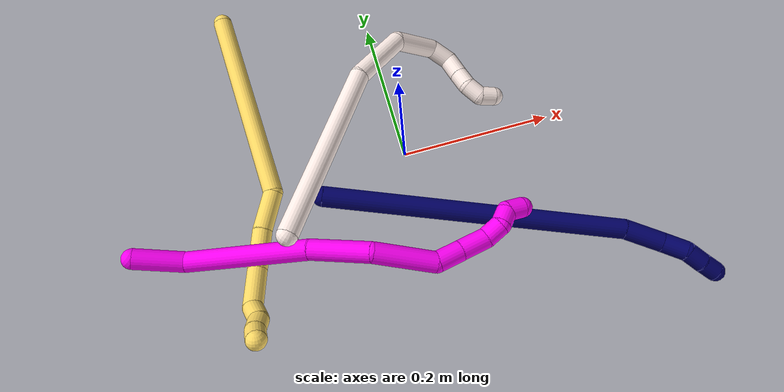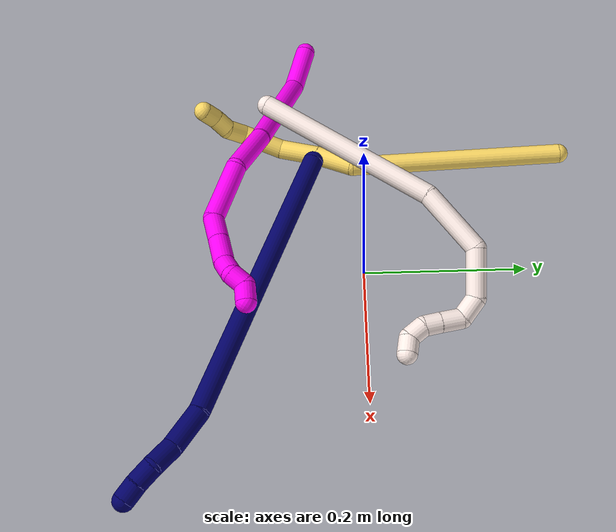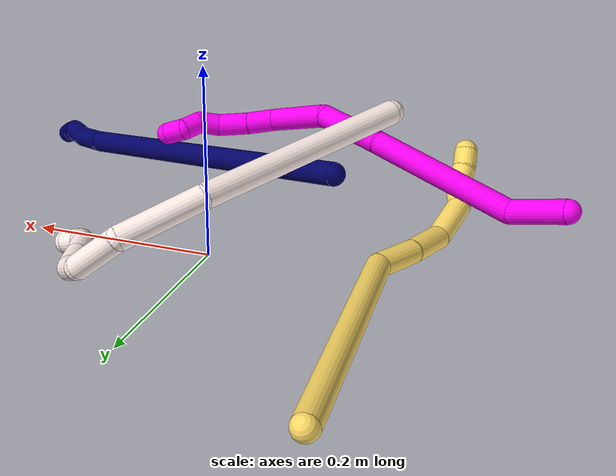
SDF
<sdf version="1.7">
 <world name="default">
  <model name="5">
   <static>0</static>
   <link name="5">
    <collision name="collision-cylinder-e_1_1_4">
     <pose>-0.004283 -0.113052 -0.078783 2.17942 -0.031075 -0.059518</pose>
     <geometry><cylinder><radius>0.0125</radius><length>0.275723</length></cylinder></geometry>
     <surface>
      <friction><ode><mu>1.16</mu><mu2>1.16</mu2><slip1>0</slip1><slip2>0</slip2></ode></friction>
      <contact><ode><kp>1e+06</kp><kd>1</kd><max_vel>0</max_vel><min_depth>0.001</min_depth></ode></contact>
     </surface>
    </collision>
    <visual name="visual-cylinder-e_1_1_4">
     <pose>-0.004283 -0.113052 -0.078783 2.17942 -0.031075 -0.059518</pose>
     <geometry><cylinder><radius>0.0125</radius><length>0.275723</length></cylinder></geometry>
     <material><ambient>1 0.858824 0.4 1</ambient></material>
    </visual>
    <collision name="collision-cylinder-e_2_4_5">
     <pose>-0.021794 -0.24157 -0.173169 2.36066 -0.541933 -1.18739</pose>
     <geometry><cylinder><radius>0.0125</radius><length>0.051289</length></cylinder></geometry>
     <surface>
      <friction><ode><mu>1.16</mu><mu2>1.16</mu2><slip1>0</slip1><slip2>0</slip2></ode></friction>
      <contact><ode><kp>1e+06</kp><kd>1</kd><max_vel>0</max_vel><min_depth>0.001</min_depth></ode></contact>
     </surface>
    </collision>
    <visual name="visual-cylinder-e_2_4_5">
     <pose>-0.021794 -0.24157 -0.173169 2.36066 -0.541933 -1.18739</pose>
     <geometry><cylinder><radius>0.0125</radius><length>0.051289</length></cylinder></geometry>
     <material><ambient>1 0.858824 0.4 1</ambient></material>
    </visual>
    <collision name="collision-cylinder-e_3_5_6">
     <pose>-0.044962 -0.274202 -0.204877 2.32425 -0.399631 -0.874874</pose>
     <geometry><cylinder><radius>0.0125</radius><length>0.0511</length></cylinder></geometry>
     <surface>
      <friction><ode><mu>1.16</mu><mu2>1.16</mu2><slip1>0</slip1><slip2>0</slip2></ode></friction>
      <contact><ode><kp>1e+06</kp><kd>1</kd><max_vel>0</max_vel><min_depth>0.001</min_depth></ode></contact>
     </surface>
    </collision>
    <visual name="visual-cylinder-e_3_5_6">
     <pose>-0.044962 -0.274202 -0.204877 2.32425 -0.399631 -0.874874</pose>
     <geometry><cylinder><radius>0.0125</radius><length>0.0511</length></cylinder></geometry>
     <material><ambient>1 0.858824 0.4 1</ambient></material>
    </visual>
    <collision name="collision-cylinder-e_4_6_7">
     <pose>-0.064746 -0.314903 -0.229234 1.90813 -0.37588 -0.524156</pose>
     <geometry><cylinder><radius>0.0125</radius><length>0.053626</length></cylinder></geometry>
     <surface>
      <friction><ode><mu>1.16</mu><mu2>1.16</mu2><slip1>0</slip1><slip2>0</slip2></ode></friction>
      <contact><ode><kp>1e+06</kp><kd>1</kd><max_vel>0</max_vel><min_depth>0.001</min_depth></ode></contact>
     </surface>
    </collision>
    <visual name="visual-cylinder-e_4_6_7">
     <pose>-0.064746 -0.314903 -0.229234 1.90813 -0.37588 -0.524156</pose>
     <geometry><cylinder><radius>0.0125</radius><length>0.053626</length></cylinder></geometry>
     <material><ambient>1 0.858824 0.4 1</ambient></material>
    </visual>
    <collision name="collision-cylinder-e_5_7_8">
     <pose>-0.074174 -0.351652 -0.236705 1.51154 0.031273 0.029473</pose>
     <geometry><cylinder><radius>0.0125</radius><length>0.026487</length></cylinder></geometry>
     <surface>
      <friction><ode><mu>1.16</mu><mu2>1.16</mu2><slip1>0</slip1><slip2>0</slip2></ode></friction>
      <contact><ode><kp>1e+06</kp><kd>1</kd><max_vel>0</max_vel><min_depth>0.001</min_depth></ode></contact>
     </surface>
    </collision>
    <visual name="visual-cylinder-e_5_7_8">
     <pose>-0.074174 -0.351652 -0.236705 1.51154 0.031273 0.029473</pose>
     <geometry><cylinder><radius>0.0125</radius><length>0.026487</length></cylinder></geometry>
     <material><ambient>1 0.858824 0.4 1</ambient></material>
    </visual>
    <collision name="collision-cylinder-e_6_8_9">
     <pose>-0.078027 -0.374575 -0.234264 1.40176 -0.40881 -0.346335</pose>
     <geometry><cylinder><radius>0.0125</radius><length>0.021469</length></cylinder></geometry>
     <surface>
      <friction><ode><mu>1.16</mu><mu2>1.16</mu2><slip1>0</slip1><slip2>0</slip2></ode></friction>
      <contact><ode><kp>1e+06</kp><kd>1</kd><max_vel>0</max_vel><min_depth>0.001</min_depth></ode></contact>
     </surface>
    </collision>
    <visual name="visual-cylinder-e_6_8_9">
     <pose>-0.078027 -0.374575 -0.234264 1.40176 -0.40881 -0.346335</pose>
     <geometry><cylinder><radius>0.0125</radius><length>0.021469</length></cylinder></geometry>
     <material><ambient>1 0.858824 0.4 1</ambient></material>
    </visual>
    <collision name="collision-cylinder-e_7_9_2">
     <pose>-0.08388 -0.394161 -0.230865 1.39619 -0.156825 -0.131662</pose>
     <geometry><cylinder><radius>0.0125</radius><length>0.020306</length></cylinder></geometry>
     <surface>
      <friction><ode><mu>1.16</mu><mu2>1.16</mu2><slip1>0</slip1><slip2>0</slip2></ode></friction>
      <contact><ode><kp>1e+06</kp><kd>1</kd><max_vel>0</max_vel><min_depth>0.001</min_depth></ode></contact>
     </surface>
    </collision>
    <visual name="visual-cylinder-e_7_9_2">
     <pose>-0.08388 -0.394161 -0.230865 1.39619 -0.156825 -0.131662</pose>
     <geometry><cylinder><radius>0.0125</radius><length>0.020306</length></cylinder></geometry>
     <material><ambient>1 0.858824 0.4 1</ambient></material>
    </visual>
    <collision name="collision-sphere-2">
     <pose>-0.085466 -0.404037 -0.229123 0 -0 0</pose>
     <geometry><sphere><radius>0.0125</radius></sphere></geometry>
     <surface>
      <friction><ode><mu>1.16</mu><mu2>1.16</mu2><slip1>0</slip1><slip2>0</slip2></ode></friction>
      <contact><ode><kp>1e+06</kp><kd>1</kd><max_vel>0</max_vel><min_depth>0.001</min_depth></ode></contact>
     </surface>
    </collision>
    <visual name="visual-sphere-2">
     <pose>-0.085466 -0.404037 -0.229123 0 -0 0</pose>
     <geometry><sphere><radius>0.0125</radius></sphere></geometry>
     <material><ambient>1 0.858824 0.4 1</ambient></material>
    </visual>
    <collision name="collision-sphere-9">
     <pose>-0.082294 -0.384285 -0.232607 0 -0 0</pose>
     <geometry><sphere><radius>0.0125</radius></sphere></geometry>
     <surface>
      <friction><ode><mu>1.16</mu><mu2>1.16</mu2><slip1>0</slip1><slip2>0</slip2></ode></friction>
      <contact><ode><kp>1e+06</kp><kd>1</kd><max_vel>0</max_vel><min_depth>0.001</min_depth></ode></contact>
     </surface>
    </collision>
    <visual name="visual-sphere-9">
     <pose>-0.082294 -0.384285 -0.232607 0 -0 0</pose>
     <geometry><sphere><radius>0.0125</radius></sphere></geometry>
     <material><ambient>1 0.858824 0.4 1</ambient></material>
    </visual>
    <collision name="collision-sphere-4">
     <pose>-0.008567 -0.226104 -0.157565 0 -0 0</pose>
     <geometry><sphere><radius>0.0125</radius></sphere></geometry>
     <surface>
      <friction><ode><mu>1.16</mu><mu2>1.16</mu2><slip1>0</slip1><slip2>0</slip2></ode></friction>
      <contact><ode><kp>1e+06</kp><kd>1</kd><max_vel>0</max_vel><min_depth>0.001</min_depth></ode></contact>
     </surface>
    </collision>
    <visual name="visual-sphere-4">
     <pose>-0.008567 -0.226104 -0.157565 0 -0 0</pose>
     <geometry><sphere><radius>0.0125</radius></sphere></geometry>
     <material><ambient>1 0.858824 0.4 1</ambient></material>
    </visual>
    <collision name="collision-sphere-1">
     <geometry><sphere><radius>0.0125</radius></sphere></geometry>
     <surface>
      <friction><ode><mu>1.16</mu><mu2>1.16</mu2><slip1>0</slip1><slip2>0</slip2></ode></friction>
      <contact><ode><kp>1e+06</kp><kd>1</kd><max_vel>0</max_vel><min_depth>0.001</min_depth></ode></contact>
     </surface>
    </collision>
    <visual name="visual-sphere-1">
     <geometry><sphere><radius>0.0125</radius></sphere></geometry>
     <material><ambient>1 0.858824 0.4 1</ambient></material>
    </visual>
    <collision name="collision-sphere-8">
     <pose>-0.07376 -0.364866 -0.235921 0 -0 0</pose>
     <geometry><sphere><radius>0.0125</radius></sphere></geometry>
     <surface>
      <friction><ode><mu>1.16</mu><mu2>1.16</mu2><slip1>0</slip1><slip2>0</slip2></ode></friction>
      <contact><ode><kp>1e+06</kp><kd>1</kd><max_vel>0</max_vel><min_depth>0.001</min_depth></ode></contact>
     </surface>
    </collision>
    <visual name="visual-sphere-8">
     <pose>-0.07376 -0.364866 -0.235921 0 -0 0</pose>
     <geometry><sphere><radius>0.0125</radius></sphere></geometry>
     <material><ambient>1 0.858824 0.4 1</ambient></material>
    </visual>
    <collision name="collision-sphere-5">
     <pose>-0.035021 -0.257036 -0.188774 0 -0 0</pose>
     <geometry><sphere><radius>0.0125</radius></sphere></geometry>
     <surface>
      <friction><ode><mu>1.16</mu><mu2>1.16</mu2><slip1>0</slip1><slip2>0</slip2></ode></friction>
      <contact><ode><kp>1e+06</kp><kd>1</kd><max_vel>0</max_vel><min_depth>0.001</min_depth></ode></contact>
     </surface>
    </collision>
    <visual name="visual-sphere-5">
     <pose>-0.035021 -0.257036 -0.188774 0 -0 0</pose>
     <geometry><sphere><radius>0.0125</radius></sphere></geometry>
     <material><ambient>1 0.858824 0.4 1</ambient></material>
    </visual>
    <collision name="collision-sphere-6">
     <pose>-0.054903 -0.291368 -0.22098 0 -0 0</pose>
     <geometry><sphere><radius>0.0125</radius></sphere></geometry>
     <surface>
      <friction><ode><mu>1.16</mu><mu2>1.16</mu2><slip1>0</slip1><slip2>0</slip2></ode></friction>
      <contact><ode><kp>1e+06</kp><kd>1</kd><max_vel>0</max_vel><min_depth>0.001</min_depth></ode></contact>
     </surface>
    </collision>
    <visual name="visual-sphere-6">
     <pose>-0.054903 -0.291368 -0.22098 0 -0 0</pose>
     <geometry><sphere><radius>0.0125</radius></sphere></geometry>
     <material><ambient>1 0.858824 0.4 1</ambient></material>
    </visual>
    <collision name="collision-sphere-7">
     <pose>-0.074588 -0.338438 -0.237489 0 -0 0</pose>
     <geometry><sphere><radius>0.0125</radius></sphere></geometry>
     <surface>
      <friction><ode><mu>1.16</mu><mu2>1.16</mu2><slip1>0</slip1><slip2>0</slip2></ode></friction>
      <contact><ode><kp>1e+06</kp><kd>1</kd><max_vel>0</max_vel><min_depth>0.001</min_depth></ode></contact>
     </surface>
    </collision>
    <visual name="visual-sphere-7">
     <pose>-0.074588 -0.338438 -0.237489 0 -0 0</pose>
     <geometry><sphere><radius>0.0125</radius></sphere></geometry>
     <material><ambient>1 0.858824 0.4 1</ambient></material>
    </visual>
    <inertial>
     <pose>-0.026823 -0.199639 -0.138706 0 -0 0</pose>
     <mass>0.5</mass>
     <inertia>
      <ixx>0.001645</ixx>
      <ixy>0</ixy>
      <ixz>0</ixz>
      <iyy>-0.001167</iyy>
      <iyz>0</iyz>
      <izz>0.001532</izz>
     </inertia>
    </inertial>
   </link>
   <pose>-0.196321 0.266072 0.011898 -0.610055 0.245782 0.093479</pose>
  </model>
  <model name="7">
   <static>0</static>
   <link name="7">
    <collision name="collision-cylinder-e_1_1_4">
     <pose>0.126211 -0.070003 -0.117827 2.60551 0.744236 1.9152</pose>
     <geometry><cylinder><radius>0.0125</radius><length>0.372629</length></cylinder></geometry>
     <surface>
      <friction><ode><mu>1.16</mu><mu2>1.16</mu2><slip1>0</slip1><slip2>0</slip2></ode></friction>
      <contact><ode><kp>1e+06</kp><kd>1</kd><max_vel>0</max_vel><min_depth>0.001</min_depth></ode></contact>
     </surface>
    </collision>
    <visual name="visual-cylinder-e_1_1_4">
     <pose>0.126211 -0.070003 -0.117827 2.60551 0.744236 1.9152</pose>
     <geometry><cylinder><radius>0.0125</radius><length>0.372629</length></cylinder></geometry>
     <material><ambient>0.003922 0 0.403922 1</ambient></material>
    </visual>
    <collision name="collision-cylinder-e_2_4_5">
     <pose>0.27237 -0.144739 -0.249721 2.81707 0.931155 2.51164</pose>
     <geometry><cylinder><radius>0.0125</radius><length>0.049727</length></cylinder></geometry>
     <surface>
      <friction><ode><mu>1.16</mu><mu2>1.16</mu2><slip1>0</slip1><slip2>0</slip2></ode></friction>
      <contact><ode><kp>1e+06</kp><kd>1</kd><max_vel>0</max_vel><min_depth>0.001</min_depth></ode></contact>
     </surface>
    </collision>
    <visual name="visual-cylinder-e_2_4_5">
     <pose>0.27237 -0.144739 -0.249721 2.81707 0.931155 2.51164</pose>
     <geometry><cylinder><radius>0.0125</radius><length>0.049727</length></cylinder></geometry>
     <material><ambient>0.003922 0 0.403922 1</ambient></material>
    </visual>
    <collision name="collision-cylinder-e_3_5_6">
     <pose>0.303961 -0.15006 -0.273952 3.08367 0.85227 3.01414</pose>
     <geometry><cylinder><radius>0.0125</radius><length>0.030932</length></cylinder></geometry>
     <surface>
      <friction><ode><mu>1.16</mu><mu2>1.16</mu2><slip1>0</slip1><slip2>0</slip2></ode></friction>
      <contact><ode><kp>1e+06</kp><kd>1</kd><max_vel>0</max_vel><min_depth>0.001</min_depth></ode></contact>
     </surface>
    </collision>
    <visual name="visual-cylinder-e_3_5_6">
     <pose>0.303961 -0.15006 -0.273952 3.08367 0.85227 3.01414</pose>
     <geometry><cylinder><radius>0.0125</radius><length>0.030932</length></cylinder></geometry>
     <material><ambient>0.003922 0 0.403922 1</ambient></material>
    </visual>
    <collision name="collision-cylinder-e_4_6_7">
     <pose>0.327253 -0.151896 -0.287939 2.82662 1.23838 2.70312</pose>
     <geometry><cylinder><radius>0.0125</radius><length>0.02465</length></cylinder></geometry>
     <surface>
      <friction><ode><mu>1.16</mu><mu2>1.16</mu2><slip1>0</slip1><slip2>0</slip2></ode></friction>
      <contact><ode><kp>1e+06</kp><kd>1</kd><max_vel>0</max_vel><min_depth>0.001</min_depth></ode></contact>
     </surface>
    </collision>
    <visual name="visual-cylinder-e_4_6_7">
     <pose>0.327253 -0.151896 -0.287939 2.82662 1.23838 2.70312</pose>
     <geometry><cylinder><radius>0.0125</radius><length>0.02465</length></cylinder></geometry>
     <material><ambient>0.003922 0 0.403922 1</ambient></material>
    </visual>
    <collision name="collision-cylinder-e_5_7_2">
     <pose>0.349278 -0.155413 -0.29475 2.49135 1.22376 2.24596</pose>
     <geometry><cylinder><radius>0.0125</radius><length>0.022063</length></cylinder></geometry>
     <surface>
      <friction><ode><mu>1.16</mu><mu2>1.16</mu2><slip1>0</slip1><slip2>0</slip2></ode></friction>
      <contact><ode><kp>1e+06</kp><kd>1</kd><max_vel>0</max_vel><min_depth>0.001</min_depth></ode></contact>
     </surface>
    </collision>
    <visual name="visual-cylinder-e_5_7_2">
     <pose>0.349278 -0.155413 -0.29475 2.49135 1.22376 2.24596</pose>
     <geometry><cylinder><radius>0.0125</radius><length>0.022063</length></cylinder></geometry>
     <material><ambient>0.003922 0 0.403922 1</ambient></material>
    </visual>
    <collision name="collision-sphere-2">
     <pose>0.359651 -0.157684 -0.297736 0 -0 0</pose>
     <geometry><sphere><radius>0.0125</radius></sphere></geometry>
     <surface>
      <friction><ode><mu>1.16</mu><mu2>1.16</mu2><slip1>0</slip1><slip2>0</slip2></ode></friction>
      <contact><ode><kp>1e+06</kp><kd>1</kd><max_vel>0</max_vel><min_depth>0.001</min_depth></ode></contact>
     </surface>
    </collision>
    <visual name="visual-sphere-2">
     <pose>0.359651 -0.157684 -0.297736 0 -0 0</pose>
     <geometry><sphere><radius>0.0125</radius></sphere></geometry>
     <material><ambient>0.003922 0 0.403922 1</ambient></material>
    </visual>
    <collision name="collision-sphere-7">
     <pose>0.338904 -0.153142 -0.291763 0 -0 0</pose>
     <geometry><sphere><radius>0.0125</radius></sphere></geometry>
     <surface>
      <friction><ode><mu>1.16</mu><mu2>1.16</mu2><slip1>0</slip1><slip2>0</slip2></ode></friction>
      <contact><ode><kp>1e+06</kp><kd>1</kd><max_vel>0</max_vel><min_depth>0.001</min_depth></ode></contact>
     </surface>
    </collision>
    <visual name="visual-sphere-7">
     <pose>0.338904 -0.153142 -0.291763 0 -0 0</pose>
     <geometry><sphere><radius>0.0125</radius></sphere></geometry>
     <material><ambient>0.003922 0 0.403922 1</ambient></material>
    </visual>
    <collision name="collision-sphere-6">
     <pose>0.315603 -0.15065 -0.284115 0 -0 0</pose>
     <geometry><sphere><radius>0.0125</radius></sphere></geometry>
     <surface>
      <friction><ode><mu>1.16</mu><mu2>1.16</mu2><slip1>0</slip1><slip2>0</slip2></ode></friction>
      <contact><ode><kp>1e+06</kp><kd>1</kd><max_vel>0</max_vel><min_depth>0.001</min_depth></ode></contact>
     </surface>
    </collision>
    <visual name="visual-sphere-6">
     <pose>0.315603 -0.15065 -0.284115 0 -0 0</pose>
     <geometry><sphere><radius>0.0125</radius></sphere></geometry>
     <material><ambient>0.003922 0 0.403922 1</ambient></material>
    </visual>
    <collision name="collision-sphere-5">
     <pose>0.292318 -0.149471 -0.263788 0 -0 0</pose>
     <geometry><sphere><radius>0.0125</radius></sphere></geometry>
     <surface>
      <friction><ode><mu>1.16</mu><mu2>1.16</mu2><slip1>0</slip1><slip2>0</slip2></ode></friction>
      <contact><ode><kp>1e+06</kp><kd>1</kd><max_vel>0</max_vel><min_depth>0.001</min_depth></ode></contact>
     </surface>
    </collision>
    <visual name="visual-sphere-5">
     <pose>0.292318 -0.149471 -0.263788 0 -0 0</pose>
     <geometry><sphere><radius>0.0125</radius></sphere></geometry>
     <material><ambient>0.003922 0 0.403922 1</ambient></material>
    </visual>
    <collision name="collision-sphere-1">
     <geometry><sphere><radius>0.0125</radius></sphere></geometry>
     <surface>
      <friction><ode><mu>1.16</mu><mu2>1.16</mu2><slip1>0</slip1><slip2>0</slip2></ode></friction>
      <contact><ode><kp>1e+06</kp><kd>1</kd><max_vel>0</max_vel><min_depth>0.001</min_depth></ode></contact>
     </surface>
    </collision>
    <visual name="visual-sphere-1">
     <geometry><sphere><radius>0.0125</radius></sphere></geometry>
     <material><ambient>0.003922 0 0.403922 1</ambient></material>
    </visual>
    <collision name="collision-sphere-4">
     <pose>0.252422 -0.140007 -0.235655 0 -0 0</pose>
     <geometry><sphere><radius>0.0125</radius></sphere></geometry>
     <surface>
      <friction><ode><mu>1.16</mu><mu2>1.16</mu2><slip1>0</slip1><slip2>0</slip2></ode></friction>
      <contact><ode><kp>1e+06</kp><kd>1</kd><max_vel>0</max_vel><min_depth>0.001</min_depth></ode></contact>
     </surface>
    </collision>
    <visual name="visual-sphere-4">
     <pose>0.252422 -0.140007 -0.235655 0 -0 0</pose>
     <geometry><sphere><radius>0.0125</radius></sphere></geometry>
     <material><ambient>0.003922 0 0.403922 1</ambient></material>
    </visual>
    <inertial>
     <pose>0.171498 -0.090195 -0.156797 0 -0 0</pose>
     <mass>0.5</mass>
     <inertia>
      <ixx>0.001945</ixx>
      <ixy>0</ixy>
      <ixz>0</ixz>
      <iyy>0.005672</iyy>
      <iyz>0</iyz>
      <izz>-0.001342</izz>
     </inertia>
    </inertial>
   </link>
   <pose>-0.11515 -0.059239 0.083412 2.4872 0.556962 -1.11497</pose>
  </model>
  <model name="10">
   <static>0</static>
   <link name="10">
    <collision name="collision-cylinder-e_1_1_4">
     <pose>0.015893 0.000146 -0.025803 -3.13595 0.552064 -3.12169</pose>
     <geometry><cylinder><radius>0.0125</radius><length>0.06061</length></cylinder></geometry>
     <surface>
      <friction><ode><mu>1.16</mu><mu2>1.16</mu2><slip1>0</slip1><slip2>0</slip2></ode></friction>
      <contact><ode><kp>1e+06</kp><kd>1</kd><max_vel>0</max_vel><min_depth>0.001</min_depth></ode></contact>
     </surface>
    </collision>
    <visual name="visual-cylinder-e_1_1_4">
     <pose>0.015893 0.000146 -0.025803 -3.13595 0.552064 -3.12169</pose>
     <geometry><cylinder><radius>0.0125</radius><length>0.06061</length></cylinder></geometry>
     <material><ambient>1 0 0.964706 1</ambient></material>
    </visual>
    <collision name="collision-cylinder-e_2_4_5">
     <pose>0.093358 -0.025133 -0.094601 2.60758 0.889233 2.09923</pose>
     <geometry><cylinder><radius>0.0125</radius><length>0.158569</length></cylinder></geometry>
     <surface>
      <friction><ode><mu>1.16</mu><mu2>1.16</mu2><slip1>0</slip1><slip2>0</slip2></ode></friction>
      <contact><ode><kp>1e+06</kp><kd>1</kd><max_vel>0</max_vel><min_depth>0.001</min_depth></ode></contact>
     </surface>
    </collision>
    <visual name="visual-cylinder-e_2_4_5">
     <pose>0.093358 -0.025133 -0.094601 2.60758 0.889233 2.09923</pose>
     <geometry><cylinder><radius>0.0125</radius><length>0.158569</length></cylinder></geometry>
     <material><ambient>1 0 0.964706 1</ambient></material>
    </visual>
    <collision name="collision-cylinder-e_3_5_6">
     <pose>0.180039 -0.063742 -0.16144 2.63646 0.74461 1.97364</pose>
     <geometry><cylinder><radius>0.0125</radius><length>0.074104</length></cylinder></geometry>
     <surface>
      <friction><ode><mu>1.16</mu><mu2>1.16</mu2><slip1>0</slip1><slip2>0</slip2></ode></friction>
      <contact><ode><kp>1e+06</kp><kd>1</kd><max_vel>0</max_vel><min_depth>0.001</min_depth></ode></contact>
     </surface>
    </collision>
    <visual name="visual-cylinder-e_3_5_6">
     <pose>0.180039 -0.063742 -0.16144 2.63646 0.74461 1.97364</pose>
     <geometry><cylinder><radius>0.0125</radius><length>0.074104</length></cylinder></geometry>
     <material><ambient>1 0 0.964706 1</ambient></material>
    </visual>
    <collision name="collision-cylinder-e_4_6_7">
     <pose>0.222441 -0.078599 -0.218466 3.09126 0.479889 2.93653</pose>
     <geometry><cylinder><radius>0.0125</radius><length>0.074913</length></cylinder></geometry>
     <surface>
      <friction><ode><mu>1.16</mu><mu2>1.16</mu2><slip1>0</slip1><slip2>0</slip2></ode></friction>
      <contact><ode><kp>1e+06</kp><kd>1</kd><max_vel>0</max_vel><min_depth>0.001</min_depth></ode></contact>
     </surface>
    </collision>
    <visual name="visual-cylinder-e_4_6_7">
     <pose>0.222441 -0.078599 -0.218466 3.09126 0.479889 2.93653</pose>
     <geometry><cylinder><radius>0.0125</radius><length>0.074913</length></cylinder></geometry>
     <material><ambient>1 0 0.964706 1</ambient></material>
    </visual>
    <collision name="collision-cylinder-e_5_7_8">
     <pose>0.251734 -0.075054 -0.260495 -2.6087 0.862947 -2.07136</pose>
     <geometry><cylinder><radius>0.0125</radius><length>0.031588</length></cylinder></geometry>
     <surface>
      <friction><ode><mu>1.16</mu><mu2>1.16</mu2><slip1>0</slip1><slip2>0</slip2></ode></friction>
      <contact><ode><kp>1e+06</kp><kd>1</kd><max_vel>0</max_vel><min_depth>0.001</min_depth></ode></contact>
     </surface>
    </collision>
    <visual name="visual-cylinder-e_5_7_8">
     <pose>0.251734 -0.075054 -0.260495 -2.6087 0.862947 -2.07136</pose>
     <geometry><cylinder><radius>0.0125</radius><length>0.031588</length></cylinder></geometry>
     <material><ambient>1 0 0.964706 1</ambient></material>
    </visual>
    <collision name="collision-cylinder-e_6_8_9">
     <pose>0.277574 -0.065085 -0.278582 -2.66675 0.926778 -2.2396</pose>
     <geometry><cylinder><radius>0.0125</radius><length>0.034616</length></cylinder></geometry>
     <surface>
      <friction><ode><mu>1.16</mu><mu2>1.16</mu2><slip1>0</slip1><slip2>0</slip2></ode></friction>
      <contact><ode><kp>1e+06</kp><kd>1</kd><max_vel>0</max_vel><min_depth>0.001</min_depth></ode></contact>
     </surface>
    </collision>
    <visual name="visual-cylinder-e_6_8_9">
     <pose>0.277574 -0.065085 -0.278582 -2.66675 0.926778 -2.2396</pose>
     <geometry><cylinder><radius>0.0125</radius><length>0.034616</length></cylinder></geometry>
     <material><ambient>1 0 0.964706 1</ambient></material>
    </visual>
    <collision name="collision-cylinder-e_7_9_10">
     <pose>0.302438 -0.057549 -0.290541 -2.34384 1.23151 -2.06708</pose>
     <geometry><cylinder><radius>0.0125</radius><length>0.02338</length></cylinder></geometry>
     <surface>
      <friction><ode><mu>1.16</mu><mu2>1.16</mu2><slip1>0</slip1><slip2>0</slip2></ode></friction>
      <contact><ode><kp>1e+06</kp><kd>1</kd><max_vel>0</max_vel><min_depth>0.001</min_depth></ode></contact>
     </surface>
    </collision>
    <visual name="visual-cylinder-e_7_9_10">
     <pose>0.302438 -0.057549 -0.290541 -2.34384 1.23151 -2.06708</pose>
     <geometry><cylinder><radius>0.0125</radius><length>0.02338</length></cylinder></geometry>
     <material><ambient>1 0 0.964706 1</ambient></material>
    </visual>
    <collision name="collision-cylinder-e_8_10_11">
     <pose>0.320088 -0.047035 -0.294358 -1.71214 0.703771 -0.800536</pose>
     <geometry><cylinder><radius>0.0125</radius><length>0.020481</length></cylinder></geometry>
     <surface>
      <friction><ode><mu>1.16</mu><mu2>1.16</mu2><slip1>0</slip1><slip2>0</slip2></ode></friction>
      <contact><ode><kp>1e+06</kp><kd>1</kd><max_vel>0</max_vel><min_depth>0.001</min_depth></ode></contact>
     </surface>
    </collision>
    <visual name="visual-cylinder-e_8_10_11">
     <pose>0.320088 -0.047035 -0.294358 -1.71214 0.703771 -0.800536</pose>
     <geometry><cylinder><radius>0.0125</radius><length>0.020481</length></cylinder></geometry>
     <material><ambient>1 0 0.964706 1</ambient></material>
    </visual>
    <collision name="collision-cylinder-e_9_11_2">
     <pose>0.333463 -0.035924 -0.303281 -2.73353 0.669718 -2.06867</pose>
     <geometry><cylinder><radius>0.0125</radius><length>0.021741</length></cylinder></geometry>
     <surface>
      <friction><ode><mu>1.16</mu><mu2>1.16</mu2><slip1>0</slip1><slip2>0</slip2></ode></friction>
      <contact><ode><kp>1e+06</kp><kd>1</kd><max_vel>0</max_vel><min_depth>0.001</min_depth></ode></contact>
     </surface>
    </collision>
    <visual name="visual-cylinder-e_9_11_2">
     <pose>0.333463 -0.035924 -0.303281 -2.73353 0.669718 -2.06867</pose>
     <geometry><cylinder><radius>0.0125</radius><length>0.021741</length></cylinder></geometry>
     <material><ambient>1 0 0.964706 1</ambient></material>
    </visual>
    <collision name="collision-sphere-2">
     <pose>0.340211 -0.032542 -0.311103 0 -0 0</pose>
     <geometry><sphere><radius>0.0125</radius></sphere></geometry>
     <surface>
      <friction><ode><mu>1.16</mu><mu2>1.16</mu2><slip1>0</slip1><slip2>0</slip2></ode></friction>
      <contact><ode><kp>1e+06</kp><kd>1</kd><max_vel>0</max_vel><min_depth>0.001</min_depth></ode></contact>
     </surface>
    </collision>
    <visual name="visual-sphere-2">
     <pose>0.340211 -0.032542 -0.311103 0 -0 0</pose>
     <geometry><sphere><radius>0.0125</radius></sphere></geometry>
     <material><ambient>1 0 0.964706 1</ambient></material>
    </visual>
    <collision name="collision-sphere-11">
     <pose>0.326715 -0.039306 -0.295458 0 -0 0</pose>
     <geometry><sphere><radius>0.0125</radius></sphere></geometry>
     <surface>
      <friction><ode><mu>1.16</mu><mu2>1.16</mu2><slip1>0</slip1><slip2>0</slip2></ode></friction>
      <contact><ode><kp>1e+06</kp><kd>1</kd><max_vel>0</max_vel><min_depth>0.001</min_depth></ode></contact>
     </surface>
    </collision>
    <visual name="visual-sphere-11">
     <pose>0.326715 -0.039306 -0.295458 0 -0 0</pose>
     <geometry><sphere><radius>0.0125</radius></sphere></geometry>
     <material><ambient>1 0 0.964706 1</ambient></material>
    </visual>
    <collision name="collision-sphere-10">
     <pose>0.313462 -0.054765 -0.293258 0 -0 0</pose>
     <geometry><sphere><radius>0.0125</radius></sphere></geometry>
     <surface>
      <friction><ode><mu>1.16</mu><mu2>1.16</mu2><slip1>0</slip1><slip2>0</slip2></ode></friction>
      <contact><ode><kp>1e+06</kp><kd>1</kd><max_vel>0</max_vel><min_depth>0.001</min_depth></ode></contact>
     </surface>
    </collision>
    <visual name="visual-sphere-10">
     <pose>0.313462 -0.054765 -0.293258 0 -0 0</pose>
     <geometry><sphere><radius>0.0125</radius></sphere></geometry>
     <material><ambient>1 0 0.964706 1</ambient></material>
    </visual>
    <collision name="collision-sphere-9">
     <pose>0.291415 -0.060334 -0.287825 0 -0 0</pose>
     <geometry><sphere><radius>0.0125</radius></sphere></geometry>
     <surface>
      <friction><ode><mu>1.16</mu><mu2>1.16</mu2><slip1>0</slip1><slip2>0</slip2></ode></friction>
      <contact><ode><kp>1e+06</kp><kd>1</kd><max_vel>0</max_vel><min_depth>0.001</min_depth></ode></contact>
     </surface>
    </collision>
    <visual name="visual-sphere-9">
     <pose>0.291415 -0.060334 -0.287825 0 -0 0</pose>
     <geometry><sphere><radius>0.0125</radius></sphere></geometry>
     <material><ambient>1 0 0.964706 1</ambient></material>
    </visual>
    <collision name="collision-sphere-4">
     <pose>0.031787 0.000291 -0.051605 0 -0 0</pose>
     <geometry><sphere><radius>0.0125</radius></sphere></geometry>
     <surface>
      <friction><ode><mu>1.16</mu><mu2>1.16</mu2><slip1>0</slip1><slip2>0</slip2></ode></friction>
      <contact><ode><kp>1e+06</kp><kd>1</kd><max_vel>0</max_vel><min_depth>0.001</min_depth></ode></contact>
     </surface>
    </collision>
    <visual name="visual-sphere-4">
     <pose>0.031787 0.000291 -0.051605 0 -0 0</pose>
     <geometry><sphere><radius>0.0125</radius></sphere></geometry>
     <material><ambient>1 0 0.964706 1</ambient></material>
    </visual>
    <collision name="collision-sphere-1">
     <geometry><sphere><radius>0.0125</radius></sphere></geometry>
     <surface>
      <friction><ode><mu>1.16</mu><mu2>1.16</mu2><slip1>0</slip1><slip2>0</slip2></ode></friction>
      <contact><ode><kp>1e+06</kp><kd>1</kd><max_vel>0</max_vel><min_depth>0.001</min_depth></ode></contact>
     </surface>
    </collision>
    <visual name="visual-sphere-1">
     <geometry><sphere><radius>0.0125</radius></sphere></geometry>
     <material><ambient>1 0 0.964706 1</ambient></material>
    </visual>
    <collision name="collision-sphere-8">
     <pose>0.263733 -0.069837 -0.26934 0 -0 0</pose>
     <geometry><sphere><radius>0.0125</radius></sphere></geometry>
     <surface>
      <friction><ode><mu>1.16</mu><mu2>1.16</mu2><slip1>0</slip1><slip2>0</slip2></ode></friction>
      <contact><ode><kp>1e+06</kp><kd>1</kd><max_vel>0</max_vel><min_depth>0.001</min_depth></ode></contact>
     </surface>
    </collision>
    <visual name="visual-sphere-8">
     <pose>0.263733 -0.069837 -0.26934 0 -0 0</pose>
     <geometry><sphere><radius>0.0125</radius></sphere></geometry>
     <material><ambient>1 0 0.964706 1</ambient></material>
    </visual>
    <collision name="collision-sphere-5">
     <pose>0.154929 -0.050557 -0.137596 0 -0 0</pose>
     <geometry><sphere><radius>0.0125</radius></sphere></geometry>
     <surface>
      <friction><ode><mu>1.16</mu><mu2>1.16</mu2><slip1>0</slip1><slip2>0</slip2></ode></friction>
      <contact><ode><kp>1e+06</kp><kd>1</kd><max_vel>0</max_vel><min_depth>0.001</min_depth></ode></contact>
     </surface>
    </collision>
    <visual name="visual-sphere-5">
     <pose>0.154929 -0.050557 -0.137596 0 -0 0</pose>
     <geometry><sphere><radius>0.0125</radius></sphere></geometry>
     <material><ambient>1 0 0.964706 1</ambient></material>
    </visual>
    <collision name="collision-sphere-6">
     <pose>0.205148 -0.076927 -0.185283 0 -0 0</pose>
     <geometry><sphere><radius>0.0125</radius></sphere></geometry>
     <surface>
      <friction><ode><mu>1.16</mu><mu2>1.16</mu2><slip1>0</slip1><slip2>0</slip2></ode></friction>
      <contact><ode><kp>1e+06</kp><kd>1</kd><max_vel>0</max_vel><min_depth>0.001</min_depth></ode></contact>
     </surface>
    </collision>
    <visual name="visual-sphere-6">
     <pose>0.205148 -0.076927 -0.185283 0 -0 0</pose>
     <geometry><sphere><radius>0.0125</radius></sphere></geometry>
     <material><ambient>1 0 0.964706 1</ambient></material>
    </visual>
    <collision name="collision-sphere-7">
     <pose>0.239734 -0.080271 -0.25165 0 -0 0</pose>
     <geometry><sphere><radius>0.0125</radius></sphere></geometry>
     <surface>
      <friction><ode><mu>1.16</mu><mu2>1.16</mu2><slip1>0</slip1><slip2>0</slip2></ode></friction>
      <contact><ode><kp>1e+06</kp><kd>1</kd><max_vel>0</max_vel><min_depth>0.001</min_depth></ode></contact>
     </surface>
    </collision>
    <visual name="visual-sphere-7">
     <pose>0.239734 -0.080271 -0.25165 0 -0 0</pose>
     <geometry><sphere><radius>0.0125</radius></sphere></geometry>
     <material><ambient>1 0 0.964706 1</ambient></material>
    </visual>
    <inertial>
     <pose>0.168417 -0.044603 -0.164361 0 -0 0</pose>
     <mass>0.5</mass>
     <inertia>
      <ixx>6.3e-05</ixx>
      <ixy>0</ixy>
      <ixz>0</ixz>
      <iyy>0.000561</iyy>
      <iyz>0</iyz>
      <izz>-0.000233</izz>
     </inertia>
    </inertial>
   </link>
   <pose>-0.346724 -0.068104 0.072671 -0.847363 -0.500561 0.433314</pose>
  </model>
  <model name="11">
   <static>0</static>
   <link name="11">
    <collision name="collision-cylinder-e_1_1_4">
     <pose>-0.043823 0.090538 0.059075 -0.99267 -0.385129 0.210405</pose>
     <geometry><cylinder><radius>0.0125</radius><length>0.233303</length></cylinder></geometry>
     <surface>
      <friction><ode><mu>1.16</mu><mu2>1.16</mu2><slip1>0</slip1><slip2>0</slip2></ode></friction>
      <contact><ode><kp>1e+06</kp><kd>1</kd><max_vel>0</max_vel><min_depth>0.001</min_depth></ode></contact>
     </surface>
    </collision>
    <visual name="visual-cylinder-e_1_1_4">
     <pose>-0.043823 0.090538 0.059075 -0.99267 -0.385129 0.210405</pose>
     <geometry><cylinder><radius>0.0125</radius><length>0.233303</length></cylinder></geometry>
     <material><ambient>1 0.933333 0.909804 1</ambient></material>
    </visual>
    <collision name="collision-cylinder-e_2_4_5">
     <pose>-0.091515 0.220401 0.136587 -1.1324 -0.088836 0.056488</pose>
     <geometry><cylinder><radius>0.0125</radius><length>0.087208</length></cylinder></geometry>
     <surface>
      <friction><ode><mu>1.16</mu><mu2>1.16</mu2><slip1>0</slip1><slip2>0</slip2></ode></friction>
      <contact><ode><kp>1e+06</kp><kd>1</kd><max_vel>0</max_vel><min_depth>0.001</min_depth></ode></contact>
     </surface>
    </collision>
    <visual name="visual-cylinder-e_2_4_5">
     <pose>-0.091515 0.220401 0.136587 -1.1324 -0.088836 0.056488</pose>
     <geometry><cylinder><radius>0.0125</radius><length>0.087208</length></cylinder></geometry>
     <material><ambient>1 0.933333 0.909804 1</ambient></material>
    </visual>
    <collision name="collision-cylinder-e_3_5_6">
     <pose>-0.080071 0.285258 0.15627 -1.52204 0.539689 -0.515146</pose>
     <geometry><cylinder><radius>0.0125</radius><length>0.059598</length></cylinder></geometry>
     <surface>
      <friction><ode><mu>1.16</mu><mu2>1.16</mu2><slip1>0</slip1><slip2>0</slip2></ode></friction>
      <contact><ode><kp>1e+06</kp><kd>1</kd><max_vel>0</max_vel><min_depth>0.001</min_depth></ode></contact>
     </surface>
    </collision>
    <visual name="visual-cylinder-e_3_5_6">
     <pose>-0.080071 0.285258 0.15627 -1.52204 0.539689 -0.515146</pose>
     <geometry><cylinder><radius>0.0125</radius><length>0.059598</length></cylinder></geometry>
     <material><ambient>1 0.933333 0.909804 1</ambient></material>
    </visual>
    <collision name="collision-cylinder-e_4_6_7">
     <pose>-0.051529 0.316583 0.1565 -1.74448 1.15255 -1.31713</pose>
     <geometry><cylinder><radius>0.0125</radius><length>0.028954</length></cylinder></geometry>
     <surface>
      <friction><ode><mu>1.16</mu><mu2>1.16</mu2><slip1>0</slip1><slip2>0</slip2></ode></friction>
      <contact><ode><kp>1e+06</kp><kd>1</kd><max_vel>0</max_vel><min_depth>0.001</min_depth></ode></contact>
     </surface>
    </collision>
    <visual name="visual-cylinder-e_4_6_7">
     <pose>-0.051529 0.316583 0.1565 -1.74448 1.15255 -1.31713</pose>
     <geometry><cylinder><radius>0.0125</radius><length>0.028954</length></cylinder></geometry>
     <material><ambient>1 0.933333 0.909804 1</ambient></material>
    </visual>
    <collision name="collision-cylinder-e_5_7_8">
     <pose>-0.025515 0.317914 0.15369 1.95304 1.2111 1.59498</pose>
     <geometry><cylinder><radius>0.0125</radius><length>0.027318</length></cylinder></geometry>
     <surface>
      <friction><ode><mu>1.16</mu><mu2>1.16</mu2><slip1>0</slip1><slip2>0</slip2></ode></friction>
      <contact><ode><kp>1e+06</kp><kd>1</kd><max_vel>0</max_vel><min_depth>0.001</min_depth></ode></contact>
     </surface>
    </collision>
    <visual name="visual-cylinder-e_5_7_8">
     <pose>-0.025515 0.317914 0.15369 1.95304 1.2111 1.59498</pose>
     <geometry><cylinder><radius>0.0125</radius><length>0.027318</length></cylinder></geometry>
     <material><ambient>1 0.933333 0.909804 1</ambient></material>
    </visual>
    <collision name="collision-cylinder-e_6_8_9">
     <pose>-0.002813 0.310207 0.150801 1.89632 1.23819 1.56332</pose>
     <geometry><cylinder><radius>0.0125</radius><length>0.020984</length></cylinder></geometry>
     <surface>
      <friction><ode><mu>1.16</mu><mu2>1.16</mu2><slip1>0</slip1><slip2>0</slip2></ode></friction>
      <contact><ode><kp>1e+06</kp><kd>1</kd><max_vel>0</max_vel><min_depth>0.001</min_depth></ode></contact>
     </surface>
    </collision>
    <visual name="visual-cylinder-e_6_8_9">
     <pose>-0.002813 0.310207 0.150801 1.89632 1.23819 1.56332</pose>
     <geometry><cylinder><radius>0.0125</radius><length>0.020984</length></cylinder></geometry>
     <material><ambient>1 0.933333 0.909804 1</ambient></material>
    </visual>
    <collision name="collision-cylinder-e_7_9_10">
     <pose>0.018028 0.308498 0.149079 -1.95777 1.42005 -1.81405</pose>
     <geometry><cylinder><radius>0.0125</radius><length>0.0221</length></cylinder></geometry>
     <surface>
      <friction><ode><mu>1.16</mu><mu2>1.16</mu2><slip1>0</slip1><slip2>0</slip2></ode></friction>
      <contact><ode><kp>1e+06</kp><kd>1</kd><max_vel>0</max_vel><min_depth>0.001</min_depth></ode></contact>
     </surface>
    </collision>
    <visual name="visual-cylinder-e_7_9_10">
     <pose>0.018028 0.308498 0.149079 -1.95777 1.42005 -1.81405</pose>
     <geometry><cylinder><radius>0.0125</radius><length>0.0221</length></cylinder></geometry>
     <material><ambient>1 0.933333 0.909804 1</ambient></material>
    </visual>
    <collision name="collision-cylinder-e_8_10_2">
     <pose>0.035863 0.316816 0.151873 -1.10377 0.738278 -0.467679</pose>
     <geometry><cylinder><radius>0.0125</radius><length>0.020536</length></cylinder></geometry>
     <surface>
      <friction><ode><mu>1.16</mu><mu2>1.16</mu2><slip1>0</slip1><slip2>0</slip2></ode></friction>
      <contact><ode><kp>1e+06</kp><kd>1</kd><max_vel>0</max_vel><min_depth>0.001</min_depth></ode></contact>
     </surface>
    </collision>
    <visual name="visual-cylinder-e_8_10_2">
     <pose>0.035863 0.316816 0.151873 -1.10377 0.738278 -0.467679</pose>
     <geometry><cylinder><radius>0.0125</radius><length>0.020536</length></cylinder></geometry>
     <material><ambient>1 0.933333 0.909804 1</ambient></material>
    </visual>
    <collision name="collision-sphere-2">
     <pose>0.042774 0.323597 0.155292 0 -0 0</pose>
     <geometry><sphere><radius>0.0125</radius></sphere></geometry>
     <surface>
      <friction><ode><mu>1.16</mu><mu2>1.16</mu2><slip1>0</slip1><slip2>0</slip2></ode></friction>
      <contact><ode><kp>1e+06</kp><kd>1</kd><max_vel>0</max_vel><min_depth>0.001</min_depth></ode></contact>
     </surface>
    </collision>
    <visual name="visual-sphere-2">
     <pose>0.042774 0.323597 0.155292 0 -0 0</pose>
     <geometry><sphere><radius>0.0125</radius></sphere></geometry>
     <material><ambient>1 0.933333 0.909804 1</ambient></material>
    </visual>
    <collision name="collision-sphere-10">
     <pose>0.028953 0.310035 0.148453 0 -0 0</pose>
     <geometry><sphere><radius>0.0125</radius></sphere></geometry>
     <surface>
      <friction><ode><mu>1.16</mu><mu2>1.16</mu2><slip1>0</slip1><slip2>0</slip2></ode></friction>
      <contact><ode><kp>1e+06</kp><kd>1</kd><max_vel>0</max_vel><min_depth>0.001</min_depth></ode></contact>
     </surface>
    </collision>
    <visual name="visual-sphere-10">
     <pose>0.028953 0.310035 0.148453 0 -0 0</pose>
     <geometry><sphere><radius>0.0125</radius></sphere></geometry>
     <material><ambient>1 0.933333 0.909804 1</ambient></material>
    </visual>
    <collision name="collision-sphere-9">
     <pose>0.007104 0.306961 0.149706 0 -0 0</pose>
     <geometry><sphere><radius>0.0125</radius></sphere></geometry>
     <surface>
      <friction><ode><mu>1.16</mu><mu2>1.16</mu2><slip1>0</slip1><slip2>0</slip2></ode></friction>
      <contact><ode><kp>1e+06</kp><kd>1</kd><max_vel>0</max_vel><min_depth>0.001</min_depth></ode></contact>
     </surface>
    </collision>
    <visual name="visual-sphere-9">
     <pose>0.007104 0.306961 0.149706 0 -0 0</pose>
     <geometry><sphere><radius>0.0125</radius></sphere></geometry>
     <material><ambient>1 0.933333 0.909804 1</ambient></material>
    </visual>
    <collision name="collision-sphere-4">
     <pose>-0.087647 0.181076 0.118151 0 -0 0</pose>
     <geometry><sphere><radius>0.0125</radius></sphere></geometry>
     <surface>
      <friction><ode><mu>1.16</mu><mu2>1.16</mu2><slip1>0</slip1><slip2>0</slip2></ode></friction>
      <contact><ode><kp>1e+06</kp><kd>1</kd><max_vel>0</max_vel><min_depth>0.001</min_depth></ode></contact>
     </surface>
    </collision>
    <visual name="visual-sphere-4">
     <pose>-0.087647 0.181076 0.118151 0 -0 0</pose>
     <geometry><sphere><radius>0.0125</radius></sphere></geometry>
     <material><ambient>1 0.933333 0.909804 1</ambient></material>
    </visual>
    <collision name="collision-sphere-1">
     <geometry><sphere><radius>0.0125</radius></sphere></geometry>
     <surface>
      <friction><ode><mu>1.16</mu><mu2>1.16</mu2><slip1>0</slip1><slip2>0</slip2></ode></friction>
      <contact><ode><kp>1e+06</kp><kd>1</kd><max_vel>0</max_vel><min_depth>0.001</min_depth></ode></contact>
     </surface>
    </collision>
    <visual name="visual-sphere-1">
     <geometry><sphere><radius>0.0125</radius></sphere></geometry>
     <material><ambient>1 0.933333 0.909804 1</ambient></material>
    </visual>
    <collision name="collision-sphere-8">
     <pose>-0.01273 0.313453 0.151897 0 -0 0</pose>
     <geometry><sphere><radius>0.0125</radius></sphere></geometry>
     <surface>
      <friction><ode><mu>1.16</mu><mu2>1.16</mu2><slip1>0</slip1><slip2>0</slip2></ode></friction>
      <contact><ode><kp>1e+06</kp><kd>1</kd><max_vel>0</max_vel><min_depth>0.001</min_depth></ode></contact>
     </surface>
    </collision>
    <visual name="visual-sphere-8">
     <pose>-0.01273 0.313453 0.151897 0 -0 0</pose>
     <geometry><sphere><radius>0.0125</radius></sphere></geometry>
     <material><ambient>1 0.933333 0.909804 1</ambient></material>
    </visual>
    <collision name="collision-sphere-5">
     <pose>-0.095384 0.259725 0.155024 0 -0 0</pose>
     <geometry><sphere><radius>0.0125</radius></sphere></geometry>
     <surface>
      <friction><ode><mu>1.16</mu><mu2>1.16</mu2><slip1>0</slip1><slip2>0</slip2></ode></friction>
      <contact><ode><kp>1e+06</kp><kd>1</kd><max_vel>0</max_vel><min_depth>0.001</min_depth></ode></contact>
     </surface>
    </collision>
    <visual name="visual-sphere-5">
     <pose>-0.095384 0.259725 0.155024 0 -0 0</pose>
     <geometry><sphere><radius>0.0125</radius></sphere></geometry>
     <material><ambient>1 0.933333 0.909804 1</ambient></material>
    </visual>
    <collision name="collision-sphere-6">
     <pose>-0.064758 0.310791 0.157516 0 -0 0</pose>
     <geometry><sphere><radius>0.0125</radius></sphere></geometry>
     <surface>
      <friction><ode><mu>1.16</mu><mu2>1.16</mu2><slip1>0</slip1><slip2>0</slip2></ode></friction>
      <contact><ode><kp>1e+06</kp><kd>1</kd><max_vel>0</max_vel><min_depth>0.001</min_depth></ode></contact>
     </surface>
    </collision>
    <visual name="visual-sphere-6">
     <pose>-0.064758 0.310791 0.157516 0 -0 0</pose>
     <geometry><sphere><radius>0.0125</radius></sphere></geometry>
     <material><ambient>1 0.933333 0.909804 1</ambient></material>
    </visual>
    <collision name="collision-sphere-7">
     <pose>-0.0383 0.322374 0.155483 0 -0 0</pose>
     <geometry><sphere><radius>0.0125</radius></sphere></geometry>
     <surface>
      <friction><ode><mu>1.16</mu><mu2>1.16</mu2><slip1>0</slip1><slip2>0</slip2></ode></friction>
      <contact><ode><kp>1e+06</kp><kd>1</kd><max_vel>0</max_vel><min_depth>0.001</min_depth></ode></contact>
     </surface>
    </collision>
    <visual name="visual-sphere-7">
     <pose>-0.0383 0.322374 0.155483 0 -0 0</pose>
     <geometry><sphere><radius>0.0125</radius></sphere></geometry>
     <material><ambient>1 0.933333 0.909804 1</ambient></material>
    </visual>
    <inertial>
     <pose>-0.04818 0.190057 0.10663 0 -0 0</pose>
     <mass>0.5</mass>
     <inertia>
      <ixx>0.001246</ixx>
      <ixy>0</ixy>
      <ixz>0</ixz>
      <iyy>0.000907</iyy>
      <iyz>0</iyz>
      <izz>-0.000501</izz>
     </inertia>
    </inertial>
   </link>
   <pose>-0.159485 -0.113698 0.13817 -0.796749 0.091808 -0.989655</pose>
  </model>
 </world>
</sdf>
